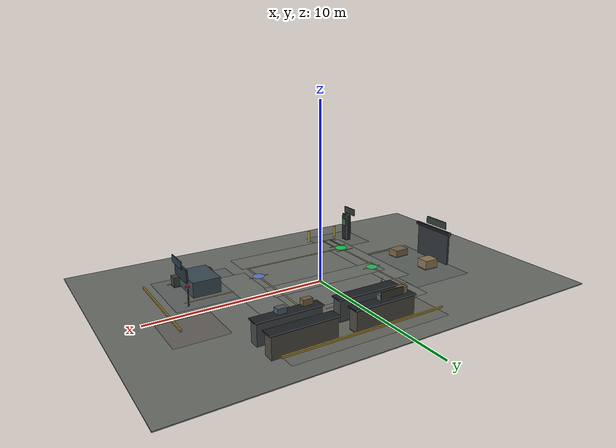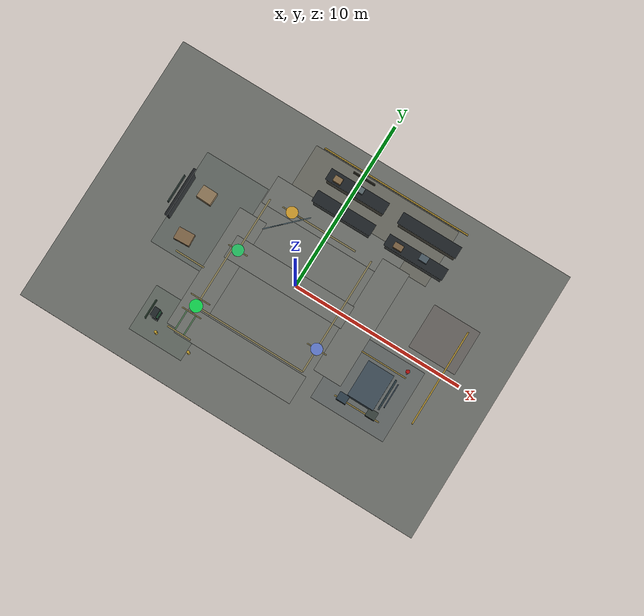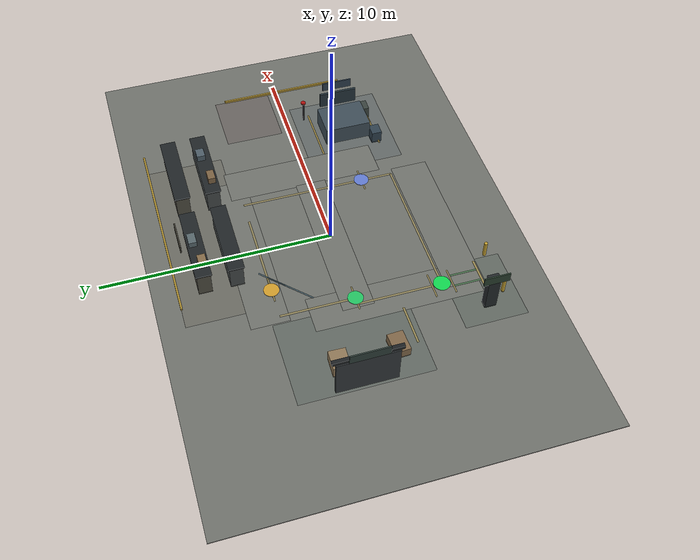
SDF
<sdf version="1.9">
 <world name="factory_patrol">
  <model name="factory_patrol_station_pads">
   <static>true</static>
   <pose>0 0 0.125 0 0 0</pose>
   <link name="link">
    <visual name="station_A_pad">
     <pose>-3.55 0.0 0 0 0 0</pose>
     <geometry><cylinder><radius>0.33</radius><length>0.035</length></cylinder></geometry>
     <material><diffuse>0.12 0.88 0.42 0.82</diffuse><emissive>0.00 0.22 0.08 1</emissive></material>
    </visual>
    <visual name="station_B_pad">
     <pose>-2.2 3.2 0 0 0 0</pose>
     <geometry><cylinder><radius>0.33</radius><length>0.035</length></cylinder></geometry>
     <material><diffuse>0.95 0.70 0.16 0.82</diffuse><emissive>0.22 0.10 0.00 1</emissive></material>
    </visual>
    <visual name="station_C_pad">
     <pose>2.7 -2.25 0 0 0 0</pose>
     <geometry><cylinder><radius>0.33</radius><length>0.035</length></cylinder></geometry>
     <material><diffuse>0.42 0.54 0.95 0.82</diffuse><emissive>0.04 0.08 0.24 1</emissive></material>
    </visual>
    <visual name="factory_dock_pad">
     <pose>-3.85 -3.65 0 0 0 0</pose>
     <geometry><cylinder><radius>0.36</radius><length>0.035</length></cylinder></geometry>
     <material><diffuse>0.06 0.95 0.34 0.88</diffuse><emissive>0.00 0.28 0.08 1</emissive></material>
    </visual>
   </link>
  </model>
  <model name="floor">
   <static>true</static>
   <link name="link">
    <collision name="collision"><geometry><box><size>24 16 0.05</size></box></geometry></collision>
    <visual name="visual">
     <geometry><box><size>24 16 0.05</size></box></geometry>
     <material>
      <ambient>0.43 0.44 0.42 1</ambient>
      <diffuse>0.43 0.44 0.42 1</diffuse>
      <specular>0.03 0.03 0.03 1</specular>
     </material>
    </visual>
   </link>
  </model>
  <model name="industrial_v2_factory_layout">
   <static>true</static>
   <link name="link">
    <visual name="industrial_floor_receiving_zone">
     <pose>-5.80 0.80 0.056 0 0 0</pose>
     <geometry><box><size>3.80 5.60 0.012</size></box></geometry>
     <material><diffuse>0.24 0.32 0.29 0.18</diffuse><ambient>0.24 0.32 0.29 0.18</ambient></material>
    </visual>
    <visual name="industrial_floor_storage_zone">
     <pose>1.40 5.25 0.058 0 0 0</pose>
     <geometry><box><size>8.80 3.40 0.012</size></box></geometry>
     <material><diffuse>0.40 0.36 0.28 0.18</diffuse><ambient>0.40 0.36 0.28 0.18</ambient></material>
    </visual>
    <visual name="industrial_floor_packing_zone">
     <pose>5.95 -2.45 0.060 0 0 0</pose>
     <geometry><box><size>4.40 4.20 0.012</size></box></geometry>
     <material><diffuse>0.26 0.32 0.38 0.18</diffuse><ambient>0.26 0.32 0.38 0.18</ambient></material>
    </visual>
    <visual name="industrial_floor_dock_zone">
     <pose>-4.60 -5.15 0.062 0 0 0</pose>
     <geometry><box><size>3.20 2.70 0.012</size></box></geometry>
     <material><diffuse>0.24 0.34 0.28 0.20</diffuse><ambient>0.24 0.34 0.28 0.20</ambient></material>
    </visual>
    <visual name="industrial_floor_restricted_zone">
     <pose>8.10 1.70 0.064 0 0 0</pose>
     <geometry><box><size>2.80 2.60 0.012</size></box></geometry>
     <material><diffuse>0.34 0.22 0.22 0.16</diffuse><ambient>0.34 0.22 0.22 0.16</ambient></material>
    </visual>
    <visual name="industrial_aisle_left">
     <pose>-3.85 -1.60 0.070 0 0 1.5708</pose>
     <geometry><box><size>7.20 1.65 0.010</size></box></geometry>
     <material><diffuse>0.50 0.51 0.48 0.14</diffuse><ambient>0.50 0.51 0.48 0.14</ambient></material>
    </visual>
    <visual name="industrial_aisle_back">
     <pose>0.15 3.65 0.072 0 0 0</pose>
     <geometry><box><size>8.00 1.65 0.010</size></box></geometry>
     <material><diffuse>0.50 0.51 0.48 0.14</diffuse><ambient>0.50 0.51 0.48 0.14</ambient></material>
    </visual>
    <visual name="industrial_aisle_right">
     <pose>3.95 0.20 0.074 0 0 1.5708</pose>
     <geometry><box><size>6.90 1.65 0.010</size></box></geometry>
     <material><diffuse>0.50 0.51 0.48 0.14</diffuse><ambient>0.50 0.51 0.48 0.14</ambient></material>
    </visual>
    <visual name="industrial_aisle_return">
     <pose>-0.55 -4.60 0.076 0 0 0</pose>
     <geometry><box><size>7.10 1.65 0.010</size></box></geometry>
     <material><diffuse>0.50 0.51 0.48 0.14</diffuse><ambient>0.50 0.51 0.48 0.14</ambient></material>
    </visual>
    <visual name="industrial_aisle_center">
     <pose>-0.40 0.00 0.078 0 0 0</pose>
     <geometry><box><size>7.20 1.35 0.010</size></box></geometry>
     <material><diffuse>0.50 0.51 0.48 0.10</diffuse><ambient>0.50 0.51 0.48 0.10</ambient></material>
    </visual>
    <visual name="industrial_route_dock_receiving">
     <pose>-3.85 -1.83 0.086 0 0 1.5708</pose>
     <geometry><box><size>3.64 0.085 0.018</size></box></geometry>
     <material><diffuse>0.67 0.60 0.36 0.68</diffuse><emissive>0.05 0.04 0.00 1</emissive></material>
    </visual>
    <visual name="industrial_route_receiving_storage">
     <pose>-3.55 1.60 0.088 0 0 1.5708</pose>
     <geometry><box><size>3.20 0.085 0.018</size></box></geometry>
     <material><diffuse>0.67 0.60 0.36 0.68</diffuse><emissive>0.05 0.04 0.00 1</emissive></material>
    </visual>
    <visual name="industrial_route_storage_back">
     <pose>-0.42 3.20 0.090 0 0 0</pose>
     <geometry><box><size>4.26 0.085 0.018</size></box></geometry>
     <material><diffuse>0.67 0.60 0.36 0.68</diffuse><emissive>0.05 0.04 0.00 1</emissive></material>
    </visual>
    <visual name="industrial_route_storage_packing">
     <pose>2.70 0.48 0.092 0 0 1.5708</pose>
     <geometry><box><size>5.44 0.085 0.018</size></box></geometry>
     <material><diffuse>0.67 0.60 0.36 0.68</diffuse><emissive>0.05 0.04 0.00 1</emissive></material>
    </visual>
    <visual name="industrial_route_packing_return">
     <pose>2.70 -2.95 0.094 0 0 1.5708</pose>
     <geometry><box><size>1.40 0.085 0.018</size></box></geometry>
     <material><diffuse>0.67 0.60 0.36 0.68</diffuse><emissive>0.05 0.04 0.00 1</emissive></material>
    </visual>
    <visual name="industrial_route_return_dock">
     <pose>-0.58 -3.65 0.096 0 0 0</pose>
     <geometry><box><size>6.55 0.085 0.018</size></box></geometry>
     <material><diffuse>0.67 0.60 0.36 0.68</diffuse><emissive>0.05 0.04 0.00 1</emissive></material>
    </visual>
    <visual name="industrial_slow_hatch_1">
     <pose>-2.58 2.12 0.105 0 0 0.7854</pose>
     <geometry><box><size>1.35 0.050 0.018</size></box></geometry>
     <material><diffuse>0.23 0.42 0.52 0.48</diffuse></material>
    </visual>
    <visual name="industrial_slow_hatch_2">
     <pose>-2.28 2.42 0.105 0 0 0.7854</pose>
     <geometry><box><size>1.35 0.050 0.018</size></box></geometry>
     <material><diffuse>0.23 0.42 0.52 0.48</diffuse></material>
    </visual>
    <visual name="industrial_slow_hatch_3">
     <pose>-1.98 2.72 0.105 0 0 0.7854</pose>
     <geometry><box><size>1.35 0.050 0.018</size></box></geometry>
     <material><diffuse>0.23 0.42 0.52 0.48</diffuse></material>
    </visual>
    <visual name="industrial_slow_hatch_4">
     <pose>-1.68 3.02 0.105 0 0 0.7854</pose>
     <geometry><box><size>1.35 0.050 0.018</size></box></geometry>
     <material><diffuse>0.23 0.42 0.52 0.48</diffuse></material>
    </visual>
    <visual name="industrial_stop_dock_n">
     <pose>-3.85 -3.22 0.110 0 0 0</pose>
     <geometry><box><size>1.18 0.055 0.018</size></box></geometry>
     <material><diffuse>0.72 0.64 0.38 0.82</diffuse></material>
    </visual>
    <visual name="industrial_stop_dock_s">
     <pose>-3.85 -4.08 0.110 0 0 0</pose>
     <geometry><box><size>1.18 0.055 0.018</size></box></geometry>
     <material><diffuse>0.72 0.64 0.38 0.82</diffuse></material>
    </visual>
    <visual name="industrial_stop_receiving">
     <pose>-3.55 0.00 0.112 0 0 0</pose>
     <geometry><box><size>1.18 0.055 0.018</size></box></geometry>
     <material><diffuse>0.72 0.64 0.38 0.76</diffuse></material>
    </visual>
    <visual name="industrial_stop_storage">
     <pose>-2.20 3.20 0.114 0 0 0</pose>
     <geometry><box><size>1.18 0.055 0.018</size></box></geometry>
     <material><diffuse>0.72 0.64 0.38 0.76</diffuse></material>
    </visual>
    <visual name="industrial_stop_packing">
     <pose>2.70 -2.25 0.116 0 0 0</pose>
     <geometry><box><size>1.18 0.055 0.018</size></box></geometry>
     <material><diffuse>0.72 0.64 0.38 0.76</diffuse></material>
    </visual>
    <collision name="industrial_rack_a_collision">
     <pose>0.20 5.80 0.58 0 0 0</pose>
     <geometry><box><size>3.40 0.58 1.16</size></box></geometry>
    </collision>
    <collision name="industrial_rack_b_collision">
     <pose>4.60 5.80 0.58 0 0 0</pose>
     <geometry><box><size>3.40 0.58 1.16</size></box></geometry>
    </collision>
    <collision name="industrial_rack_c_collision">
     <pose>0.20 4.45 0.58 0 0 0</pose>
     <geometry><box><size>3.40 0.58 1.16</size></box></geometry>
    </collision>
    <collision name="industrial_rack_d_collision">
     <pose>4.60 4.45 0.58 0 0 0</pose>
     <geometry><box><size>3.40 0.58 1.16</size></box></geometry>
    </collision>
    <visual name="industrial_rack_a">
     <pose>0.20 5.80 0.58 0 0 0</pose>
     <geometry><box><size>3.40 0.58 1.16</size></box></geometry>
     <material><diffuse>0.30 0.29 0.25 1</diffuse></material>
    </visual>
    <visual name="industrial_rack_b">
     <pose>4.60 5.80 0.58 0 0 0</pose>
     <geometry><box><size>3.40 0.58 1.16</size></box></geometry>
     <material><diffuse>0.30 0.29 0.25 1</diffuse></material>
    </visual>
    <visual name="industrial_rack_c">
     <pose>0.20 4.45 0.58 0 0 0</pose>
     <geometry><box><size>3.40 0.58 1.16</size></box></geometry>
     <material><diffuse>0.26 0.28 0.28 1</diffuse></material>
    </visual>
    <visual name="industrial_rack_d">
     <pose>4.60 4.45 0.58 0 0 0</pose>
     <geometry><box><size>3.40 0.58 1.16</size></box></geometry>
     <material><diffuse>0.26 0.28 0.28 1</diffuse></material>
    </visual>
    <visual name="industrial_rack_a_shelf">
     <pose>0.20 5.80 1.18 0 0 0</pose>
     <geometry><box><size>3.55 0.68 0.055</size></box></geometry>
     <material><diffuse>0.12 0.14 0.15 1</diffuse></material>
    </visual>
    <visual name="industrial_rack_b_shelf">
     <pose>4.60 5.80 1.18 0 0 0</pose>
     <geometry><box><size>3.55 0.68 0.055</size></box></geometry>
     <material><diffuse>0.12 0.14 0.15 1</diffuse></material>
    </visual>
    <visual name="industrial_rack_c_shelf">
     <pose>0.20 4.45 1.18 0 0 0</pose>
     <geometry><box><size>3.55 0.68 0.055</size></box></geometry>
     <material><diffuse>0.12 0.14 0.15 1</diffuse></material>
    </visual>
    <visual name="industrial_rack_d_shelf">
     <pose>4.60 4.45 1.18 0 0 0</pose>
     <geometry><box><size>3.55 0.68 0.055</size></box></geometry>
     <material><diffuse>0.12 0.14 0.15 1</diffuse></material>
    </visual>
    <visual name="industrial_rack_load_a01">
     <pose>-0.95 5.72 1.43 0 0 0</pose>
     <geometry><box><size>0.46 0.34 0.32</size></box></geometry>
     <material><diffuse>0.52 0.42 0.28 1</diffuse></material>
    </visual>
    <visual name="industrial_rack_load_a02">
     <pose>0.25 5.90 1.43 0 0 0</pose>
     <geometry><box><size>0.54 0.34 0.26</size></box></geometry>
     <material><diffuse>0.34 0.40 0.42 1</diffuse></material>
    </visual>
    <visual name="industrial_rack_load_b01">
     <pose>3.55 4.38 1.43 0 0 0</pose>
     <geometry><box><size>0.52 0.32 0.30</size></box></geometry>
     <material><diffuse>0.48 0.38 0.26 1</diffuse></material>
    </visual>
    <visual name="industrial_rack_load_b02">
     <pose>5.00 4.55 1.43 0 0 0</pose>
     <geometry><box><size>0.48 0.36 0.28</size></box></geometry>
     <material><diffuse>0.30 0.36 0.40 1</diffuse></material>
    </visual>
    <visual name="industrial_receiving_door">
     <pose>-7.55 0.80 1.00 0 0 0</pose>
     <geometry><box><size>0.12 2.55 1.82</size></box></geometry>
     <material><diffuse>0.19 0.21 0.22 1</diffuse></material>
    </visual>
    <visual name="industrial_receiving_header">
     <pose>-7.50 0.80 2.02 0 0 0</pose>
     <geometry><box><size>0.16 2.85 0.16</size></box></geometry>
     <material><diffuse>0.11 0.12 0.13 1</diffuse></material>
    </visual>
    <visual name="industrial_receiving_pallet_1">
     <pose>-6.30 -0.90 0.23 0 0 0.05</pose>
     <geometry><box><size>0.92 0.68 0.46</size></box></geometry>
     <material><diffuse>0.50 0.40 0.28 1</diffuse></material>
    </visual>
    <visual name="industrial_receiving_pallet_2">
     <pose>-6.45 1.58 0.28 0 0 -0.03</pose>
     <geometry><box><size>0.86 0.72 0.56</size></box></geometry>
     <material><diffuse>0.56 0.47 0.34 1</diffuse></material>
    </visual>
    <visual name="industrial_receiving_lane_stop">
     <pose>-5.45 -1.72 0.115 0 0 0</pose>
     <geometry><box><size>1.75 0.080 0.018</size></box></geometry>
     <material><diffuse>0.70 0.62 0.34 0.72</diffuse></material>
    </visual>
    <visual name="industrial_packing_table">
     <pose>6.10 -2.45 0.54 0 0 0</pose>
     <geometry><box><size>1.55 2.10 0.84</size></box></geometry>
     <material><diffuse>0.24 0.30 0.34 1</diffuse></material>
    </visual>
    <visual name="industrial_packing_tool_board">
     <pose>7.08 -2.45 1.28 0 0 0</pose>
     <geometry><box><size>0.10 1.72 0.72</size></box></geometry>
     <material><diffuse>0.14 0.20 0.23 1</diffuse></material>
    </visual>
    <visual name="industrial_packing_bin_1">
     <pose>5.20 -3.72 0.30 0 0 0</pose>
     <geometry><box><size>0.56 0.46 0.60</size></box></geometry>
     <material><diffuse>0.18 0.25 0.30 1</diffuse></material>
    </visual>
    <visual name="industrial_packing_bin_2">
     <pose>6.92 -3.66 0.30 0 0 0</pose>
     <geometry><box><size>0.56 0.46 0.60</size></box></geometry>
     <material><diffuse>0.22 0.26 0.24 1</diffuse></material>
    </visual>
    <visual name="industrial_packing_safety_n">
     <pose>6.10 -1.10 0.120 0 0 0</pose>
     <geometry><box><size>2.70 0.070 0.018</size></box></geometry>
     <material><diffuse>0.72 0.60 0.24 0.72</diffuse></material>
    </visual>
    <visual name="industrial_packing_safety_s">
     <pose>6.10 -3.80 0.120 0 0 0</pose>
     <geometry><box><size>2.70 0.070 0.018</size></box></geometry>
     <material><diffuse>0.72 0.60 0.24 0.72</diffuse></material>
    </visual>
    <visual name="industrial_dock_pylon">
     <pose>-5.30 -5.15 0.88 0 0 0</pose>
     <geometry><box><size>0.32 0.50 1.76</size></box></geometry>
     <material><diffuse>0.13 0.15 0.16 1</diffuse></material>
    </visual>
    <visual name="industrial_dock_face">
     <pose>-5.12 -5.15 1.24 0 0 0</pose>
     <geometry><box><size>0.06 0.42 0.44</size></box></geometry>
     <material><diffuse>0.18 0.40 0.28 1</diffuse><emissive>0.00 0.05 0.02 1</emissive></material>
    </visual>
    <visual name="industrial_dock_guide_left">
     <pose>-4.12 -4.72 0.125 0 0 1.5708</pose>
     <geometry><box><size>1.22 0.070 0.018</size></box></geometry>
     <material><diffuse>0.30 0.52 0.32 0.74</diffuse></material>
    </visual>
    <visual name="industrial_dock_guide_right">
     <pose>-3.58 -4.72 0.125 0 0 1.5708</pose>
     <geometry><box><size>1.22 0.070 0.018</size></box></geometry>
     <material><diffuse>0.30 0.52 0.32 0.74</diffuse></material>
    </visual>
    <visual name="industrial_dock_stop_bar">
     <pose>-3.85 -5.32 0.128 0 0 0</pose>
     <geometry><box><size>1.42 0.080 0.018</size></box></geometry>
     <material><diffuse>0.70 0.62 0.34 0.80</diffuse></material>
    </visual>
    <visual name="industrial_guardrail_back">
     <pose>1.90 6.95 0.62 0 0 0</pose>
     <geometry><box><size>8.80 0.080 0.10</size></box></geometry>
     <material><diffuse>0.66 0.54 0.18 1</diffuse></material>
    </visual>
    <visual name="industrial_guardrail_right">
     <pose>8.95 -0.20 0.62 0 0 1.5708</pose>
     <geometry><box><size>5.60 0.080 0.10</size></box></geometry>
     <material><diffuse>0.66 0.54 0.18 1</diffuse></material>
    </visual>
    <visual name="industrial_bollard_dock_1">
     <pose>-4.85 -5.95 0.38 0 0 0</pose>
     <geometry><cylinder><radius>0.075</radius><length>0.76</length></cylinder></geometry>
     <material><diffuse>0.76 0.62 0.18 1</diffuse></material>
    </visual>
    <visual name="industrial_bollard_dock_2">
     <pose>-2.85 -5.95 0.38 0 0 0</pose>
     <geometry><cylinder><radius>0.075</radius><length>0.76</length></cylinder></geometry>
     <material><diffuse>0.76 0.62 0.18 1</diffuse></material>
    </visual>
    <visual name="industrial_estop_post">
     <pose>7.35 -0.85 0.52 0 0 0</pose>
     <geometry><cylinder><radius>0.045</radius><length>1.04</length></cylinder></geometry>
     <material><diffuse>0.10 0.10 0.11 1</diffuse></material>
    </visual>
    <visual name="industrial_estop_button">
     <pose>7.35 -0.85 1.08 0 0 0</pose>
     <geometry><cylinder><radius>0.11</radius><length>0.055</length></cylinder></geometry>
     <material><diffuse>0.68 0.06 0.05 1</diffuse><emissive>0.10 0.00 0.00 1</emissive></material>
    </visual>
    <visual name="industrial_sign_dock_board">
     <pose>-5.55 -5.15 1.92 0 0 0</pose>
     <geometry><box><size>0.055 1.10 0.42</size></box></geometry>
     <material><diffuse>0.16 0.24 0.18 0.96</diffuse></material>
    </visual>
    <visual name="industrial_sign_receiving_board">
     <pose>-7.72 0.80 2.34 0 0 0</pose>
     <geometry><box><size>0.055 1.62 0.42</size></box></geometry>
     <material><diffuse>0.18 0.24 0.22 0.96</diffuse></material>
    </visual>
    <visual name="industrial_sign_storage_a_board">
     <pose>0.20 6.45 1.80 0 0 0</pose>
     <geometry><box><size>1.30 0.055 0.38</size></box></geometry>
     <material><diffuse>0.23 0.22 0.18 0.96</diffuse></material>
    </visual>
    <visual name="industrial_sign_packing_board">
     <pose>7.28 -2.45 1.88 0 0 0</pose>
     <geometry><box><size>0.055 1.36 0.40</size></box></geometry>
     <material><diffuse>0.18 0.24 0.30 0.96</diffuse></material>
    </visual>
   </link>
  </model>
 </world>
</sdf>
